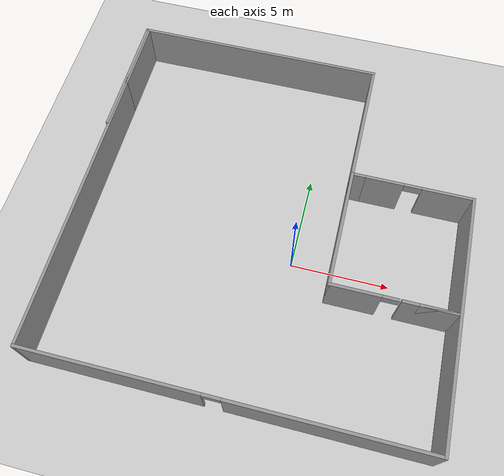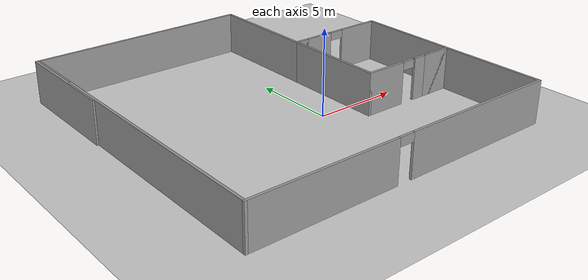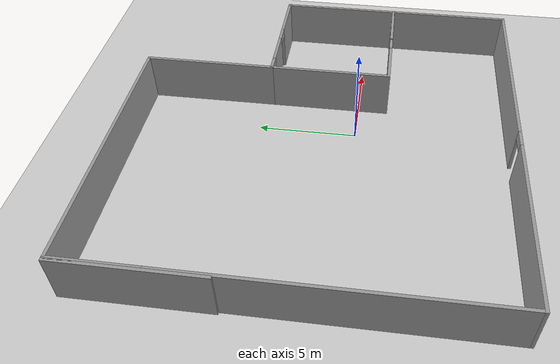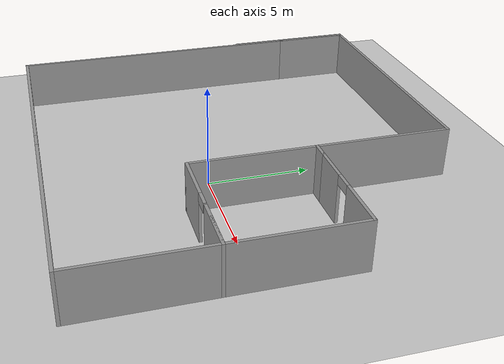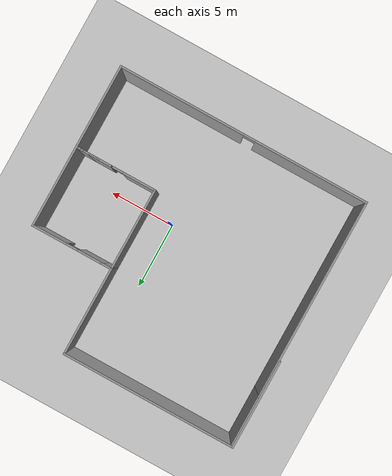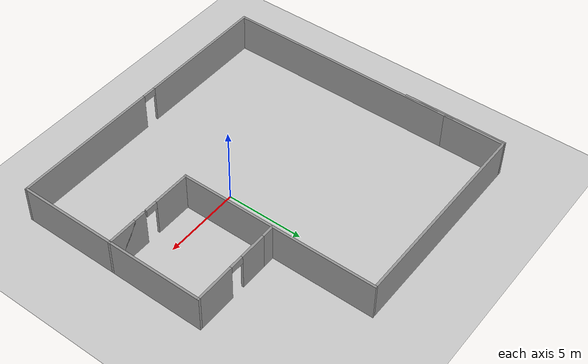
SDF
<sdf version="1.7">
 <world name="default">
  <light name="sun" type="directional">
   <pose>0 0 10 0 -0 0</pose>
   <diffuse>0.8 0.8 0.8 1</diffuse>
   <specular>0.2 0.2 0.2 1</specular>
   <attenuation>
    <range>1000</range>
    <constant>0.9</constant>
    <linear>0.01</linear>
    <quadratic>0.001</quadratic>
   </attenuation>
   <direction>-0.5 0.1 -0.9</direction>
   <spot><inner_angle>0</inner_angle><outer_angle>0</outer_angle><falloff>0</falloff></spot>
  </light>
  <model name="ground_plane">
   <static>1</static>
   <link name="link">
    <collision name="collision">
     <geometry><plane><normal>0 0 1</normal><size>100 100</size></plane></geometry>
     <surface><friction><ode><mu>100</mu><mu2>50</mu2></ode></friction></surface>
    </collision>
    <visual name="visual">
     <cast_shadows>0</cast_shadows>
     <geometry><plane><normal>0 0 1</normal><size>100 100</size></plane></geometry>
     <material>
      <script><uri>file://media/materials/scripts/gazebo.material</uri><name>Gazebo/Grey</name></script>
     </material>
    </visual>
   </link>
  </model>
  <gravity>0 0 -9.8</gravity>
  <magnetic_field>6e-06 2.3e-05 -4.2e-05</magnetic_field>
  <atmosphere type="adiabatic"/>
  <physics type="ode">
   <max_step_size>0.001</max_step_size>
   <real_time_factor>1</real_time_factor>
   <real_time_update_rate>1000</real_time_update_rate>
  </physics>
  <scene><ambient>0.4 0.4 0.4 1</ambient><background>0.7 0.7 0.7 1</background><shadows>1</shadows></scene>
  <spherical_coordinates>
   <surface_model>EARTH_WGS84</surface_model>
   <latitude_deg>0</latitude_deg>
   <longitude_deg>0</longitude_deg>
   <elevation>0</elevation>
   <heading_deg>0</heading_deg>
  </spherical_coordinates>
  <model name="custom_home">
   <pose>-1.47115 1.75112 0 0 -0 0</pose>
   <link name="Wall_24">
    <collision name="Wall_24_Collision">
     <geometry><box><size>6.75 0.15 2.5</size></box></geometry>
     <pose>0 0 1.25 0 -0 0</pose>
    </collision>
    <visual name="Wall_24_Visual">
     <pose>0 0 1.25 0 -0 0</pose>
     <geometry><box><size>6.75 0.15 2.5</size></box></geometry>
     <material>
      <script><uri>file://media/materials/scripts/gazebo.material</uri><name>Gazebo/Grey</name></script>
      <ambient>1 1 1 1</ambient>
     </material>
     <meta><layer>0</layer></meta>
    </visual>
    <pose>-9.6 6.175 0 0 -0 1.5708</pose>
   </link>
   <link name="Wall_25">
    <collision name="Wall_25_Collision">
     <geometry><box><size>13.25 0.15 2.5</size></box></geometry>
     <pose>0 0 1.25 0 -0 0</pose>
    </collision>
    <visual name="Wall_25_Visual">
     <pose>0 0 1.25 0 -0 0</pose>
     <geometry><box><size>13.25 0.15 2.5</size></box></geometry>
     <material>
      <script><uri>file://media/materials/scripts/gazebo.material</uri><name>Gazebo/Grey</name></script>
      <ambient>1 1 1 1</ambient>
     </material>
     <meta><layer>0</layer></meta>
    </visual>
    <pose>-3.05 9.475 0 0 -0 0</pose>
   </link>
   <link name="Wall_26">
    <collision name="Wall_26_Collision">
     <geometry><box><size>6.75 0.15 2.5</size></box></geometry>
     <pose>0 0 1.25 0 -0 0</pose>
    </collision>
    <visual name="Wall_26_Visual">
     <pose>0 0 1.25 0 -0 0</pose>
     <geometry><box><size>6.75 0.15 2.5</size></box></geometry>
     <material>
      <script><uri>file://media/materials/scripts/gazebo.material</uri><name>Gazebo/Grey</name></script>
      <ambient>1 1 1 1</ambient>
     </material>
     <meta><layer>0</layer></meta>
    </visual>
    <pose>3.5 6.175 0 0 -0 -1.5708</pose>
   </link>
   <link name="Wall_28">
    <collision name="Wall_28_Collision">
     <geometry><box><size>0.9 0.15 2.5</size></box></geometry>
     <pose>0 0 1.25 0 -0 0</pose>
    </collision>
    <visual name="Wall_28_Visual">
     <pose>0 0 1.25 0 -0 0</pose>
     <geometry><box><size>0.9 0.15 2.5</size></box></geometry>
     <material>
      <script><uri>file://media/materials/scripts/gazebo.material</uri><name>Gazebo/Grey</name></script>
      <ambient>1 1 1 1</ambient>
     </material>
     <meta><layer>0</layer></meta>
    </visual>
    <pose>3.875 2.875 0 0 -0 0</pose>
   </link>
   <link name="Wall_31">
    <pose>6.925 2.875 0 0 -0 0</pose>
    <visual name="Wall_31_Visual_0">
     <pose>-1.77785 0 1.25 0 -0 0</pose>
     <geometry><box><size>1.9443 0.15 2.5</size></box></geometry>
     <material>
      <script><uri>file://media/materials/scripts/gazebo.material</uri><name>Gazebo/Grey</name></script>
      <ambient>1 1 1 1</ambient>
     </material>
     <meta><layer>0</layer></meta>
    </visual>
    <collision name="Wall_31_Collision_0">
     <geometry><box><size>1.9443 0.15 2.5</size></box></geometry>
     <pose>-1.77785 0 1.25 0 -0 0</pose>
    </collision>
    <visual name="Wall_31_Visual_1">
     <pose>1.42215 0 1.25 0 -0 0</pose>
     <geometry><box><size>2.6557 0.15 2.5</size></box></geometry>
     <material>
      <script><uri>file://media/materials/scripts/gazebo.material</uri><name>Gazebo/Grey</name></script>
      <ambient>1 1 1 1</ambient>
     </material>
     <meta><layer>0</layer></meta>
    </visual>
    <collision name="Wall_31_Collision_1">
     <geometry><box><size>2.6557 0.15 2.5</size></box></geometry>
     <pose>1.42215 0 1.25 0 -0 0</pose>
    </collision>
    <visual name="Wall_31_Visual_2">
     <pose>-0.355697 0 2.25 0 -0 0</pose>
     <geometry><box><size>0.9 0.15 0.5</size></box></geometry>
     <material>
      <script><uri>file://media/materials/scripts/gazebo.material</uri><name>Gazebo/Grey</name></script>
      <ambient>1 1 1 1</ambient>
     </material>
     <meta><layer>0</layer></meta>
    </visual>
    <collision name="Wall_31_Collision_2">
     <geometry><box><size>0.9 0.15 0.5</size></box></geometry>
     <pose>-0.355697 0 2.25 0 -0 0</pose>
    </collision>
   </link>
   <link name="Wall_32">
    <collision name="Wall_32_Collision">
     <geometry><box><size>12.5 0.15 2.5</size></box></geometry>
     <pose>0 0 1.25 0 -0 0</pose>
    </collision>
    <visual name="Wall_32_Visual">
     <pose>0 0 1.25 0 -0 0</pose>
     <geometry><box><size>12.5 0.15 2.5</size></box></geometry>
     <material>
      <script><uri>file://media/materials/scripts/gazebo.material</uri><name>Gazebo/Grey</name></script>
      <ambient>1 1 1 1</ambient>
     </material>
     <meta><layer>0</layer></meta>
    </visual>
    <pose>9.6 -3.3 0 0 -0 -1.5708</pose>
   </link>
   <link name="Wall_33">
    <pose>0.05 -9.475 0 0 -0 3.14159</pose>
    <visual name="Wall_33_Visual_0">
     <pose>-4.8142 0 1.25 0 -0 0</pose>
     <geometry><box><size>9.62161 0.15 2.5</size></box></geometry>
     <material>
      <script><uri>file://media/materials/scripts/gazebo.material</uri><name>Gazebo/Grey</name></script>
      <ambient>1 1 1 1</ambient>
     </material>
     <meta><layer>0</layer></meta>
    </visual>
    <collision name="Wall_33_Collision_0">
     <geometry><box><size>9.62161 0.15 2.5</size></box></geometry>
     <pose>-4.8142 0 1.25 0 -0 0</pose>
    </collision>
    <visual name="Wall_33_Visual_1">
     <pose>5.2608 0 1.25 0 -0 0</pose>
     <geometry><box><size>8.72839 0.15 2.5</size></box></geometry>
     <material>
      <script><uri>file://media/materials/scripts/gazebo.material</uri><name>Gazebo/Grey</name></script>
      <ambient>1 1 1 1</ambient>
     </material>
     <meta><layer>0</layer></meta>
    </visual>
    <collision name="Wall_33_Collision_1">
     <geometry><box><size>8.72839 0.15 2.5</size></box></geometry>
     <pose>5.2608 0 1.25 0 -0 0</pose>
    </collision>
    <visual name="Wall_33_Visual_2">
     <pose>0.446608 0 2.25 0 -0 0</pose>
     <geometry><box><size>0.9 0.15 0.5</size></box></geometry>
     <material>
      <script><uri>file://media/materials/scripts/gazebo.material</uri><name>Gazebo/Grey</name></script>
      <ambient>1 1 1 1</ambient>
     </material>
     <meta><layer>0</layer></meta>
    </visual>
    <collision name="Wall_33_Collision_2">
     <geometry><box><size>0.9 0.15 0.5</size></box></geometry>
     <pose>0.446608 0 2.25 0 -0 0</pose>
    </collision>
   </link>
   <link name="Wall_34">
    <collision name="Wall_34_Collision">
     <geometry><box><size>15.25 0.15 2.5</size></box></geometry>
     <pose>0 0 1.25 0 -0 0</pose>
    </collision>
    <visual name="Wall_34_Visual">
     <pose>0 0 1.25 0 -0 0</pose>
     <geometry><box><size>15.25 0.15 2.5</size></box></geometry>
     <material>
      <script><uri>file://media/materials/scripts/gazebo.material</uri><name>Gazebo/Grey</name></script>
      <ambient>1 1 1 1</ambient>
     </material>
     <meta><layer>0</layer></meta>
    </visual>
    <pose>-9.5 -1.925 0 0 -0 1.5708</pose>
   </link>
   <link name="Wall_35">
    <collision name="Wall_35_Collision">
     <geometry><box><size>4 0.15 2.5</size></box></geometry>
     <pose>0 0 1.25 0 -0 0</pose>
    </collision>
    <visual name="Wall_35_Visual">
     <pose>0 0 1.25 0 -0 0</pose>
     <geometry><box><size>4 0.15 2.5</size></box></geometry>
     <material>
      <script><uri>file://media/materials/scripts/gazebo.material</uri><name>Gazebo/Grey</name></script>
      <ambient>1 1 1 1</ambient>
     </material>
     <meta><layer>0</layer></meta>
    </visual>
    <pose>-9.5 7.55 0 0 -0 1.5708</pose>
   </link>
   <link name="Wall_37">
    <collision name="Wall_37_Collision">
     <geometry><box><size>6.25 0.15 2.5</size></box></geometry>
     <pose>0 0 1.25 0 -0 0</pose>
    </collision>
    <visual name="Wall_37_Visual">
     <pose>0 0 1.25 0 -0 0</pose>
     <geometry><box><size>6.25 0.15 2.5</size></box></geometry>
     <material>
      <script><uri>file://media/materials/scripts/gazebo.material</uri><name>Gazebo/Grey</name></script>
      <ambient>1 1 1 1</ambient>
     </material>
     <meta><layer>0</layer></meta>
    </visual>
    <pose>3.5 -0.175 0 0 -0 -1.5708</pose>
   </link>
   <link name="Wall_38">
    <pose>6.55 -3.225 0 0 -0 0</pose>
    <visual name="Wall_38_Visual_0">
     <pose>-1.84846 0 1.25 0 -0 0</pose>
     <geometry><box><size>2.55307 0.15 2.5</size></box></geometry>
     <material>
      <script><uri>file://media/materials/scripts/gazebo.material</uri><name>Gazebo/Grey</name></script>
      <ambient>1 1 1 1</ambient>
     </material>
     <meta><layer>0</layer></meta>
    </visual>
    <collision name="Wall_38_Collision_0">
     <geometry><box><size>2.55307 0.15 2.5</size></box></geometry>
     <pose>-1.84846 0 1.25 0 -0 0</pose>
    </collision>
    <visual name="Wall_38_Visual_1">
     <pose>1.72654 0 1.25 0 -0 0</pose>
     <geometry><box><size>2.79693 0.15 2.5</size></box></geometry>
     <material>
      <script><uri>file://media/materials/scripts/gazebo.material</uri><name>Gazebo/Grey</name></script>
      <ambient>1 1 1 1</ambient>
     </material>
     <meta><layer>0</layer></meta>
    </visual>
    <collision name="Wall_38_Collision_1">
     <geometry><box><size>2.79693 0.15 2.5</size></box></geometry>
     <pose>1.72654 0 1.25 0 -0 0</pose>
    </collision>
    <visual name="Wall_38_Visual_2">
     <pose>2.13109 0 1.25 0 -0 0</pose>
     <geometry><box><size>1.98782 0.15 2.5</size></box></geometry>
     <material>
      <script><uri>file://media/materials/scripts/gazebo.material</uri><name>Gazebo/Grey</name></script>
      <ambient>1 1 1 1</ambient>
     </material>
     <meta><layer>0</layer></meta>
    </visual>
    <collision name="Wall_38_Collision_2">
     <geometry><box><size>1.98782 0.15 2.5</size></box></geometry>
     <pose>2.13109 0 1.25 0 -0 0</pose>
    </collision>
    <visual name="Wall_38_Visual_3">
     <pose>-0.167372 0 2.25 0 -0 0</pose>
     <geometry><box><size>0.809112 0.15 0.5</size></box></geometry>
     <material>
      <script><uri>file://media/materials/scripts/gazebo.material</uri><name>Gazebo/Grey</name></script>
      <ambient>1 1 1 1</ambient>
     </material>
     <meta><layer>0</layer></meta>
    </visual>
    <collision name="Wall_38_Collision_3">
     <geometry><box><size>0.809112 0.15 0.5</size></box></geometry>
     <pose>-0.167372 0 2.25 0 -0 0</pose>
    </collision>
   </link>
   <static>1</static>
  </model>
 </world>
</sdf>
